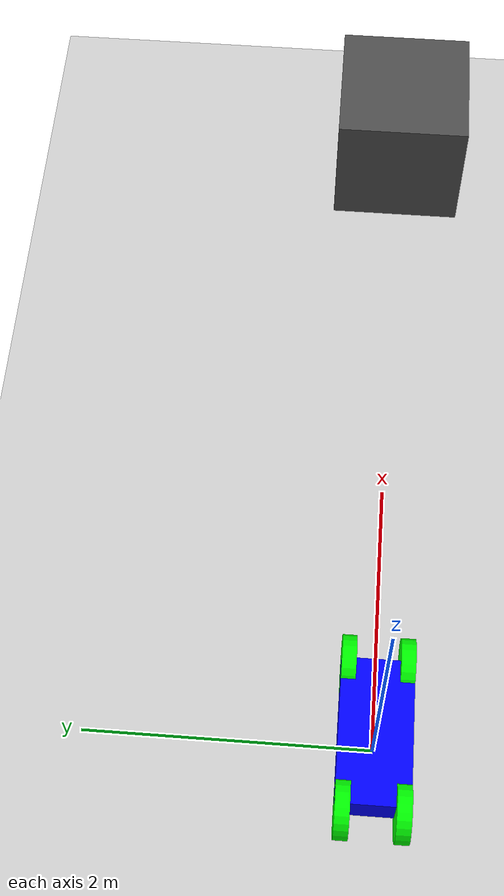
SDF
<sdf version="1.11">
 <world name="separate_plugins">
  <plugin filename="gz-sim-physics-system" name="gz::sim::systems::Physics"/>
  <plugin filename="gz-sim-user-commands-system" name="gz::sim::systems::UserCommands"/>
  <plugin filename="gz-sim-scene-broadcaster-system" name="gz::sim::systems::SceneBroadcaster"/>
  <light type="directional" name="sun">
   <pose>0 0 10 0 0 0</pose>
   <diffuse>0.8 0.8 0.8 1</diffuse>
   <specular>0.2 0.2 0.2 1</specular>
   <attenuation>
    <range>1000</range>
    <constant>0.9</constant>
    <linear>0.01</linear>
    <quadratic>0.001</quadratic>
   </attenuation>
   <direction>-0.5 0.1 -0.9</direction>
  </light>
  <model name="ground_plane">
   <static>true</static>
   <link name="link">
    <collision name="collision">
     <geometry><plane><normal>0.0 0.0 1</normal><size>100 100</size></plane></geometry>
    </collision>
    <visual name="visual">
     <geometry><plane><normal>0.0 0.0 1</normal><size>100 100</size></plane></geometry>
     <material>
      <ambient>0.8 0.8 0.8 1</ambient>
      <diffuse>0.8 0.8 0.8 1</diffuse>
      <specular>0.8 0.8 0.8 1</specular>
     </material>
    </visual>
   </link>
  </model>
  <model name="box">
   <pose>5.0 0 0.7 0 0 0</pose>
   <link name="box_link">
    <inertial>
     <inertia><ixx>1</ixx><ixy>0</ixy><ixz>0</ixz><iyy>1</iyy><iyz>0</iyz><izz>1</izz></inertia>
     <mass>1.0</mass>
    </inertial>
    <collision name="box_collision"><geometry><box><size>1 1 1</size></box></geometry></collision>
    <visual name="box_visual">
     <geometry><box><size>1 1 1</size></box></geometry>
     <material>
      <ambient>0.3 0.3 0.3 1</ambient>
      <diffuse>0.3 0.3 0.3 1</diffuse>
      <specular>0.3 0.5 0.3 1</specular>
     </material>
    </visual>
   </link>
  </model>
  <include><uri>robot-localization/sdf/rover.sdf</uri><pose>0 0 0.3 0 0 0</pose></include>
 </world>
</sdf>

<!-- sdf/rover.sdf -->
<sdf version='1.11'>

  <model name='rover'>

    <include>
      <uri>robot-localization/sdf/rover_sensor.sdf</uri>
    </include>

    <plugin name="gz::sim::systems::DiffDrive" filename="gz-sim-diff-drive-system">
      <left_joint>rear_left_joint</left_joint>
      <right_joint>rear_right_joint</right_joint>
      <wheel_separation>0.5</wheel_separation>
      <wheel_radius>0.2</wheel_radius>
      <topic>cmd_vel</topic>
    </plugin>

    <link name='chassis'>
      <inertial>
        <pose >0 0 0 0 0 0</pose>
        <mass>1.14395</mass>
        <inertia>
          <ixx>0.095328999999999997</ixx>
          <ixy>0</ixy>
          <ixz>0</ixz>
          <iyy>0.38131700000000002</iyy>
          <iyz>0</iyz>
          <izz>0.47664600000000001</izz>
        </inertia>
      </inertial>
      <collision name='chassis_collision'>
        <pose>0 0 0 0 0 0</pose>
        <geometry>
          <box>
            <size>1 0.5 0.25</size>
          </box>
        </geometry>
      </collision>
      <visual name='chassis_visual'>
        <pose>0 0 0 0 0 0</pose>
        <geometry>
          <box>
            <size>1 0.5 0.25</size>
          </box>
        </geometry>
        <material>
          <diffuse>0 0 1 1</diffuse>
          <ambient>0 0 1 1</ambient>
        </material>
      </visual>
    </link>
    <joint name='front_left_joint' type='revolute'>
      <pose relative_to='chassis'>0.5 0.20000000000000002 0 0 0 0</pose>
      <parent>chassis</parent>
      <child>front_left_wheel</child>
      <axis>
        <xyz>0 1 0</xyz>
        <limit>
          <lower>-inf</lower>
          <upper>inf</upper>
        </limit>
        <dynamics>
          <spring_reference>0</spring_reference>
          <spring_stiffness>0</spring_stiffness>
        </dynamics>
      </axis>
    </joint>
    <link name='front_left_wheel'>
      <pose relative_to='front_left_joint'>0 0 0 0 0 0</pose>
      <inertial>
        <pose>0 0 0 0 0 0</pose>
        <mass>1</mass>
        <inertia>
          <ixx>0.043333000000000003</ixx>
          <ixy>0</ixy>
          <ixz>0</ixz>
          <iyy>0.043333000000000003</iyy>
          <iyz>0</iyz>
          <izz>0.080000000000000002</izz>
        </inertia>
      </inertial>
      <collision name='front_left_wheel_collision'>
        <pose>0 0 0 1.5708 0 0</pose>
        <geometry>
          <cylinder>
            <length>0.10000000000000001</length>
            <radius>0.20000000000000002</radius>
          </cylinder>
        </geometry>
      </collision>
      <visual name='front_left_wheel_visual'>
        <pose>0 0 0 1.5708 0 0</pose>
        <geometry>
          <cylinder>
            <length>0.10000000000000001</length>
            <radius>0.20000000000000002</radius>
          </cylinder>
        </geometry>
        <material>
          <diffuse>0 1 0 1</diffuse>
          <ambient>0 1 0 1</ambient>
        </material>
      </visual>
    </link>
    <joint name='front_right_joint' type='revolute'>
      <pose relative_to='chassis'>0.5 -0.20000000000000002 0 0 0 0</pose>
      <parent>chassis</parent>
      <child>front_right_wheel</child>
      <axis>
        <xyz>0 1 0</xyz>
        <limit>
          <lower>-inf</lower>
          <upper>inf</upper>
        </limit>
        <dynamics>
          <spring_reference>0</spring_reference>
          <spring_stiffness>0</spring_stiffness>
        </dynamics>
      </axis>
    </joint>
    <link name='front_right_wheel'>
      <pose relative_to='front_right_joint'>0 0 0 0 0 0</pose>
      <inertial>
        <pose>0 0 0 0 0 0</pose>
        <mass>1</mass>
        <inertia>
          <ixx>0.043333000000000003</ixx>
          <ixy>0</ixy>
          <ixz>0</ixz>
          <iyy>0.043333000000000003</iyy>
          <iyz>0</iyz>
          <izz>0.080000000000000002</izz>
        </inertia>
      </inertial>
      <collision name='front_right_wheel_collision'>
        <pose>0 0 0 1.5708 0 0</pose>
        <geometry>
          <cylinder>
            <length>0.10000000000000001</length>
            <radius>0.20000000000000002</radius>
          </cylinder>
        </geometry>
      </collision>
      <visual name='front_right_wheel_visual'>
        <pose>0 0 0 1.5708 0 0</pose>
        <geometry>
          <cylinder>
            <length>0.10000000000000001</length>
            <radius>0.20000000000000002</radius>
          </cylinder>
        </geometry>
        <material>
          <diffuse>0 1 0 1</diffuse>
          <ambient>0 1 0 1</ambient>
        </material>
      </visual>
    </link>
    <joint name='rear_left_joint' type='revolute'>
      <pose relative_to='chassis'>-0.5 0.20000000000000002 0 0 0 0</pose>
      <parent>chassis</parent>
      <child>rear_left_wheel</child>
      <axis>
        <xyz>0 1 0</xyz>
        <limit>
          <lower>-inf</lower>
          <upper>inf</upper>
        </limit>
        <dynamics>
          <spring_reference>0</spring_reference>
          <spring_stiffness>0</spring_stiffness>
        </dynamics>
      </axis>
    </joint>
    <link name='rear_left_wheel'>
      <pose relative_to='rear_left_joint'>0 0 0 0 0 0</pose>
      <inertial>
        <pose>0 0 0 0 0 0</pose>
        <mass>1</mass>
        <inertia>
          <ixx>0.043333000000000003</ixx>
          <ixy>0</ixy>
          <ixz>0</ixz>
          <iyy>0.043333000000000003</iyy>
          <iyz>0</iyz>
          <izz>0.080000000000000002</izz>
        </inertia>
      </inertial>
      <collision name='rear_left_wheel_collision'>
        <pose>0 0 0 1.5708 0 0</pose>
        <geometry>
          <cylinder>
            <length>0.10000000000000001</length>
            <radius>0.20000000000000002</radius>
          </cylinder>
        </geometry>
      </collision>
      <visual name='rear_left_wheel_visual'>
        <pose>0 0 0 1.5708 0 0</pose>
        <geometry>
          <cylinder>
            <length>0.10000000000000001</length>
            <radius>0.20000000000000002</radius>
          </cylinder>
        </geometry>
        <material>
          <diffuse>0 1 0 1</diffuse>
          <ambient>0 1 0 1</ambient>
        </material>
      </visual>
    </link>
    <joint name='rear_right_joint' type='revolute'>
      <pose relative_to='chassis'>-0.5 -0.20000000000000002 0 0 0 0</pose>
      <parent>chassis</parent>
      <child>rear_right_wheel</child>
      <axis>
        <xyz>0 1 0</xyz>
        <limit>
          <lower>-inf</lower>
          <upper>inf</upper>
        </limit>
        <dynamics>
          <spring_reference>0</spring_reference>
          <spring_stiffness>0</spring_stiffness>
        </dynamics>
      </axis>
    </joint>
    <link name='rear_right_wheel'>
      <pose relative_to='rear_right_joint'>0 0 0 0 0 0</pose>
      <inertial>
        <pose>0 0 0 0 0 0</pose>
        <mass>1</mass>
        <inertia>
          <ixx>0.043333000000000003</ixx>
          <ixy>0</ixy>
          <ixz>0</ixz>
          <iyy>0.043333000000000003</iyy>
          <iyz>0</iyz>
          <izz>0.080000000000000002</izz>
        </inertia>
      </inertial>
      <collision name='rear_right_wheel_collision'>
        <pose>0 0 0 1.5708 0 0</pose>
        <geometry>
          <cylinder>
            <length>0.10000000000000001</length>
            <radius>0.20000000000000002</radius>
          </cylinder>
        </geometry>
      </collision>
      <visual name='rear_right_wheel_visual'>
        <pose>0 0 0 1.5708 0 0</pose>
        <geometry>
          <cylinder>
            <length>0.10000000000000001</length>
            <radius>0.20000000000000002</radius>
          </cylinder>
        </geometry>
        <material>
          <diffuse>0 1 0 1</diffuse>
          <ambient>0 1 0 1</ambient>
        </material>
      </visual>
    </link>
    <joint name="front_camera_joint" type="fixed">
      <parent>chassis</parent>
      <child>rover_sensors::camera_link</child>
      <pose relative_to='chassis'>0 0.20000000000000002 0 0 0 0</pose>
    </joint>

    <joint name="imu_joint" type="fixed">
      <parent>chassis</parent>
      <child>rover_sensors::imu_link</child>
      <pose relative_to='chassis'>0.05 0.20000000000000002 0 0 0 0</pose>
    </joint>

    <joint name="lidar_joint" type="fixed">
      <parent>chassis</parent>
      <child>rover_sensors::lidar_link</child>
      <pose relative_to='chassis'>0.1 0.20000000000000002 0 0 0 0</pose>
    </joint>

  </model>
</sdf>

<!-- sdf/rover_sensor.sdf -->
<sdf version="1.11">
    <model name="rover_sensors">

        <plugin filename="gz-sim-sensors-system" name="gz::sim::v8::systems::Sensors">
        </plugin>

        <plugin filename="gz-sim-imu-system" name="gz::sim::systems::Imu">
        </plugin>

        <link name="camera_link">
            <pose>0 0 0.4 0 0 0</pose>
            <sensor name="front_camera" type="rgbd_camera">
                <always_on>true</always_on>
                <update_rate>30</update_rate>
                <visualize>true</visualize>
                <topic>/camera</topic>
                <camera>
                    <horizontal_fov>1.047</horizontal_fov>
                    <image>
                        <width>640</width>
                        <height>480</height>
                        <format>R8G8B8</format>
                    </image>
                    <clip>
                        <near>0.1</near>
                        <far>100</far>
                    </clip>
                </camera>

            </sensor>
        </link>

        <link name="imu_link">
            <sensor name="imu" type="imu">
                <always_on>true</always_on>
                <update_rate>200</update_rate>
                <visualize>true</visualize>
                <topic>/imu</topic>
                <imu>
                    <linear_acceleration/>
                    <angular_velocity/>
                </imu>
            </sensor>
        </link>

        <link name="lidar_link">

            <sensor name="lidar" type="gpu_lidar">
                <topic>/lidar</topic>
                <update_rate>10</update_rate>
                <ray>
                    <scan>
                        <horizontal>
                            <samples>640</samples>
                            <resolution>1</resolution>
                            <min_angle>-1.396263</min_angle>
                            <max_angle>1.396263</max_angle>
                        </horizontal>
                        <vertical>
                            <samples>1</samples>
                            <resolution>0.01</resolution>
                            <min_angle>0</min_angle>
                            <max_angle>0</max_angle>
                        </vertical>
                    </scan>
                    <range>
                        <min>0.08</min>
                        <max>10.0</max>
                        <resolution>0.01</resolution>
                    </range>
                </ray>
                <always_on>1</always_on>
                <visualize>true</visualize>
            </sensor>
        </link>

    </model>

</sdf>
